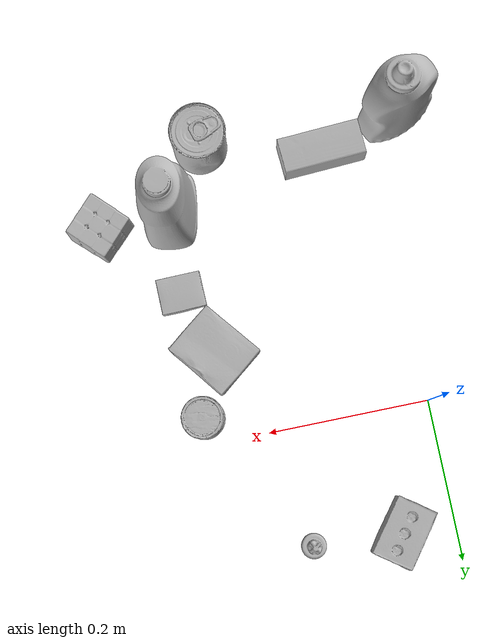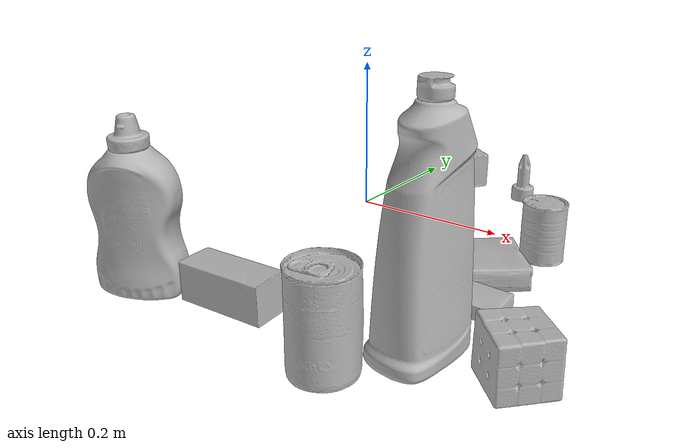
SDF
<sdf version="1.4">
  <world name="default">
    <light name="light1" type="point">
      <pose>0 0 1 0 0 0</pose>
      <diffuse>3 3 3 1</diffuse>
      <specular>3 3 3 1</specular>
    </light>
    <light name="light2" type="point">
      <pose>0 0.5 2 0 0 0</pose>
      <diffuse>1 1 1 1</diffuse>
      <specular>1 1 1 1</specular>
    </light>
    <light name="light3" type="point">
      <pose>0 0.5 2 0 0 0</pose>
      <diffuse>3 3 3 1</diffuse>
      <specular>3 3 3 1</specular>
    </light>
    <scene>
      <ambient>0.7 0.7 0.7</ambient>
    </scene>
    <model name="bottle1">
      <link name="link_bottle1">
        <collision name="default">
          <geometry>
            <mesh>
              <uri>model://bleach_cleanser/collision_meshes/collision.obj</uri>
              <scale>1.0 1.0 1.0</scale>
            </mesh>
          </geometry>
          <surface>
            <friction>
              <ode>
                <mu>0.5</mu>
                <mu2>0.5</mu2>
              </ode>
            </friction>
          <contact>
        <ode>
            <max_vel>0</max_vel>
            <min_depth>0.0001</min_depth>
            <kp>1e8</kp>
        </ode>
    </contact></surface>
        </collision>
        <visual name="default">
          <geometry>
            <mesh>
              <uri>model://bleach_cleanser/visual_meshes/visual.dae</uri>
              <scale>1.0 1.0 1.0</scale>
            </mesh>
          </geometry>
        </visual>
        <inertial>
          <mass>1.1050143241882324</mass>
          <pose>0.00012193183647468686 0.0037838828284293413 -0.02442161738872528 -0.07381670616137478 0.0004201160282461273 -0.006875061809122935</pose>
          <inertia>
            <ixx>0.0053782654</ixx>
            <iyy>0.005011756</iyy>
            <izz>0.00091954356</izz>
            <ixy>0</ixy>
            <ixz>0</ixz>
            <iyz>0</iyz>
          </inertia>
        </inertial>
      </link>
      <pose>0.26400089263916016 -0.29382839798927307 0.12578412890434265 -0.00019839865990883924 1.7724116461861908e-05 -0.13593833322500634</pose>
    </model>
    <model name="bottle2">
      <link name="link_bottle2">
        <collision name="default">
          <geometry>
            <mesh>
              <uri>model://mustard_bottle/collision_meshes/collision.obj</uri>
              <scale>1.0 1.0 1.0</scale>
            </mesh>
          </geometry>
          <surface>
            <friction>
              <ode>
                <mu>0.5</mu>
                <mu2>0.5</mu2>
              </ode>
            </friction>
          <contact>
        <ode>
            <max_vel>0</max_vel>
            <min_depth>0.0001</min_depth>
            <kp>1e8</kp>
        </ode>
    </contact></surface>
        </collision>
        <visual name="default">
          <geometry>
            <mesh>
              <uri>model://mustard_bottle/visual_meshes/visual.dae</uri>
              <scale>1.0 1.0 1.0</scale>
            </mesh>
          </geometry>
        </visual>
        <inertial>
          <mass>0.622285008430481</mass>
          <pose>0.0005032453336752951 -0.0001564739941386506 -0.0174757931381464 0.0004182326458762318 0.0009465782998157723 0.024853714910341117</pose>
          <inertia>
            <ixx>0.0017280002</ixx>
            <iyy>0.0015161741</iyy>
            <izz>0.00045541534</izz>
            <ixy>0</ixy>
            <ixz>0</ixz>
            <iyz>0</iyz>
          </inertia>
        </inertial>
      </link>
      <pose>-0.03332965448498726 -0.3620181083679199 0.0967511534690857 -0.0005515519403290093 0.030640299057795375 -1.192784842599568</pose>
    </model>
    <model name="toy1">
      <link name="link_toy1">
        <collision name="default">
          <geometry>
            <mesh>
              <uri>model://foam_brick/collision_meshes/collision.obj</uri>
              <scale>1.0 1.0 1.0</scale>
            </mesh>
          </geometry>
          <surface>
            <friction>
              <ode>
                <mu>0.5</mu>
                <mu2>0.5</mu2>
              </ode>
            </friction>
          <contact>
        <ode>
            <max_vel>0</max_vel>
            <min_depth>0.0001</min_depth>
            <kp>1e8</kp>
        </ode>
    </contact></surface>
        </collision>
        <visual name="default">
          <geometry>
            <mesh>
              <uri>model://foam_brick/visual_meshes/visual.dae</uri>
              <scale>1.0 1.0 1.0</scale>
            </mesh>
          </geometry>
        </visual>
        <inertial>
          <mass>0.1664208173751831</mass>
          <pose>-0.00025224717683158815 0.0003458438441157341 -0.00025321010616607964 -0.2940189404221327 0.017274440573450563 -0.0007449871782747126</pose>
          <inertia>
            <ixx>7.269573e-05</ixx>
            <iyy>0.00011606247</iyy>
            <izz>0.000117537464</izz>
            <ixy>0</ixy>
            <ixz>0</ixz>
            <iyz>0</iyz>
          </inertia>
        </inertial>
      </link>
      <pose>0.06652260571718216 0.15025466680526733 0.02592279203236103 0.013417074614196103 0.004152419532733587 0.933883062654845</pose>
    </model>
    <model name="toy2">
      <link name="link_toy2">
        <collision name="default">
          <geometry>
            <mesh>
              <uri>model://d_toy_airplane/collision_meshes/collision.obj</uri>
              <scale>1.0 1.0 1.0</scale>
            </mesh>
          </geometry>
          <surface>
            <friction>
              <ode>
                <mu>0.5</mu>
                <mu2>0.5</mu2>
              </ode>
            </friction>
          <contact>
        <ode>
            <max_vel>0</max_vel>
            <min_depth>0.0001</min_depth>
            <kp>1e8</kp>
        </ode>
    </contact></surface>
        </collision>
        <visual name="default">
          <geometry>
            <mesh>
              <uri>model://d_toy_airplane/visual_meshes/visual.dae</uri>
              <scale>1.0 1.0 1.0</scale>
            </mesh>
          </geometry>
        </visual>
        <inertial>
          <mass>0.021938346326351166</mass>
          <pose>9.410325583303347e-05 -5.8093231928069144e-05 -0.01172809861600399 0.0002669142468379238 0.0046790018194854816 0.5194488187392164</pose>
          <inertia>
            <ixx>6.5766894e-06</ixx>
            <iyy>6.581649e-06</iyy>
            <izz>1.9855454e-06</izz>
            <ixy>0</ixy>
            <ixz>0</ixz>
            <iyz>0</iyz>
          </inertia>
        </inertial>
      </link>
      <pose>0.17470517754554749 0.14496397972106934 0.03333839774131775 0.00020620832411347333 -5.550613489470571e-05 -1.8243278063236952</pose>
    </model>
    <model name="can1">
      <link name="link_can1">
        <collision name="default">
          <geometry>
            <mesh>
              <uri>model://tomato_soup_can/collision_meshes/collision.obj</uri>
              <scale>1.0 1.0 1.0</scale>
            </mesh>
          </geometry>
          <surface>
            <friction>
              <ode>
                <mu>0.5</mu>
                <mu2>0.5</mu2>
              </ode>
            </friction>
          <contact>
        <ode>
            <max_vel>0</max_vel>
            <min_depth>0.0001</min_depth>
            <kp>1e8</kp>
        </ode>
    </contact></surface>
        </collision>
        <visual name="default">
          <geometry>
            <mesh>
              <uri>model://tomato_soup_can/visual_meshes/visual.dae</uri>
              <scale>1.0 1.0 1.0</scale>
            </mesh>
          </geometry>
        </visual>
        <inertial>
          <mass>0.39673706889152527</mass>
          <pose>0.00012652271834667772 0.00010805520287249237 -0.0017973972717300057 0.007020066809275346 0.000422998323222239 -0.009903841103285913</pose>
          <inertia>
            <ixx>0.00043498844</ixx>
            <iyy>0.00043247454</iyy>
            <izz>0.00022545052</izz>
            <ixy>0</ixy>
            <ixz>0</ixz>
            <iyz>0</iyz>
          </inertia>
        </inertial>
      </link>
      <pose>0.2111254334449768 -0.3656170964241028 0.05127401649951935 -2.4884977718946107e-08 -1.8716533509595056e-07 -1.5581791900506614</pose>
    </model>
    <model name="can2">
      <link name="link_can2">
        <collision name="default">
          <geometry>
            <mesh>
              <uri>model://master_chef_can/collision_meshes/collision.obj</uri>
              <scale>0.5 0.5 0.5</scale>
            </mesh>
          </geometry>
          <surface>
            <friction>
              <ode>
                <mu>0.5</mu>
                <mu2>0.5</mu2>
              </ode>
            </friction>
          <contact>
        <ode>
            <max_vel>0</max_vel>
            <min_depth>0.0001</min_depth>
            <kp>1e8</kp>
        </ode>
    </contact></surface>
        </collision>
        <visual name="default">
          <geometry>
            <mesh>
              <uri>model://master_chef_can/visual_meshes/visual.dae</uri>
              <scale>0.5 0.5 0.5</scale>
            </mesh>
          </geometry>
        </visual>
        <inertial>
          <mass>0.08835740387439728</mass>
          <pose>-4.6619654312962666e-05 1.3926853625889635e-07 -5.079947004560381e-05 -0.0017995147102642629 0.0006479189020740588 -0.6102650934471076</pose>
          <inertia>
            <ixx>5.1859814e-05</ixx>
            <iyy>5.1478128e-05</iyy>
            <izz>2.8656508e-05</izz>
            <ixy>0</ixy>
            <ixz>0</ixz>
            <iyz>0</iyz>
          </inertia>
        </inertial>
      </link>
      <pose>0.273909330368042 -0.03334834799170494 0.03530198335647583 -6.464897083989158e-07 -4.267319027519836e-07 -2.8144447219190347</pose>
    </model>
    <model name="box1">
      <link name="link_box1">
        <collision name="default">
          <geometry>
            <mesh>
              <uri>model://wood_block/collision_meshes/collision.obj</uri>
              <scale>0.5 0.5 0.5</scale>
            </mesh>
          </geometry>
          <surface>
            <friction>
              <ode>
                <mu>0.5</mu>
                <mu2>0.5</mu2>
              </ode>
            </friction>
          <contact>
        <ode>
            <max_vel>0</max_vel>
            <min_depth>0.0001</min_depth>
            <kp>1e8</kp>
        </ode>
    </contact></surface>
        </collision>
        <visual name="default">
          <geometry>
            <mesh>
              <uri>model://wood_block/visual_meshes/visual.dae</uri>
              <scale>0.5 0.5 0.5</scale>
            </mesh>
          </geometry>
        </visual>
        <inertial>
          <mass>0.15377527475357056</mass>
          <pose>-2.9066577553749084e-06 -0.000285404734313488 0.00013204291462898254 -0.05220825990774677 -0.0051926953585221414 -0.0068613782788382646</pose>
          <inertia>
            <ixx>5.1443654e-05</ixx>
            <iyy>0.00016251049</iyy>
            <izz>0.00016190263</izz>
            <ixy>0</ixy>
            <ixz>0</ixz>
            <iyz>0</iyz>
          </inertia>
        </inertial>
      </link>
      <pose>0.0652967169880867 -0.3297848105430603 0.022629262879490852 -0.00520845750513966 0.005718548036876521 -3.085102105504044</pose>
    </model>
    <model name="box2">
      <link name="link_box2">
        <collision name="default">
          <geometry>
            <mesh>
              <uri>model://rubiks_cube/collision_meshes/collision.obj</uri>
              <scale>1.0 1.0 1.0</scale>
            </mesh>
          </geometry>
          <surface>
            <friction>
              <ode>
                <mu>0.5</mu>
                <mu2>0.5</mu2>
              </ode>
            </friction>
          <contact>
        <ode>
            <max_vel>0</max_vel>
            <min_depth>0.0001</min_depth>
            <kp>1e8</kp>
        </ode>
    </contact></surface>
        </collision>
        <visual name="default">
          <geometry>
            <mesh>
              <uri>model://rubiks_cube/visual_meshes/visual.dae</uri>
              <scale>1.0 1.0 1.0</scale>
            </mesh>
          </geometry>
        </visual>
        <inertial>
          <mass>0.2856966555118561</mass>
          <pose>2.6721041649580002e-05 5.2569666877388954e-05 -7.264316082000732e-06 -0.05467209736319516 -0.09813912050272719 -0.034455106160143086</pose>
          <inertia>
            <ixx>0.00015786657</ixx>
            <iyy>0.00015713037</iyy>
            <izz>0.00015917476</izz>
            <ixy>0</ixy>
            <ixz>0</ixz>
            <iyz>0</iyz>
          </inertia>
        </inertial>
      </link>
      <pose>0.352079302072525 -0.28693118691444397 0.029330065473914146 1.5776150864773921 -0.016676054076523963 0.7907552289932879</pose>
    </model>
    <model name="box3">
      <link name="link_box3">
        <collision name="default">
          <geometry>
            <mesh>
              <uri>model://gelatin_box/collision_meshes/collision.obj</uri>
              <scale>1.0 1.0 1.0</scale>
            </mesh>
          </geometry>
          <surface>
            <friction>
              <ode>
                <mu>0.5</mu>
                <mu2>0.5</mu2>
              </ode>
            </friction>
          <contact>
        <ode>
            <max_vel>0</max_vel>
            <min_depth>0.0001</min_depth>
            <kp>1e8</kp>
        </ode>
    </contact></surface>
        </collision>
        <visual name="default">
          <geometry>
            <mesh>
              <uri>model://gelatin_box/visual_meshes/visual.dae</uri>
              <scale>1.0 1.0 1.0</scale>
            </mesh>
          </geometry>
        </visual>
        <inertial>
          <mass>0.24612535536289215</mass>
          <pose>0.0004319618456065655 0.00011156871914863586 -0.00036403213744051754 -0.0010503719772071295 -0.004755818223732799 0.016440561334178715</pose>
          <inertia>
            <ixx>0.00017374444</ixx>
            <iyy>0.00012410474</iyy>
            <izz>0.00026447774</izz>
            <ixy>0</ixy>
            <ixz>0</ixz>
            <iyz>0</iyz>
          </inertia>
        </inertial>
      </link>
      <pose>0.24507589638233185 -0.11295869201421738 0.015168317593634129 0.005597487705630646 -0.007304569178273977 0.6531054697347131</pose>
    </model>
    <model name="box4">
      <link name="link_box4">
        <collision name="default">
          <geometry>
            <mesh>
              <uri>model://pudding_box/collision_meshes/collision.obj</uri>
              <scale>0.5 0.5 0.5</scale>
            </mesh>
          </geometry>
          <surface>
            <friction>
              <ode>
                <mu>0.5</mu>
                <mu2>0.5</mu2>
              </ode>
            </friction>
          <contact>
        <ode>
            <max_vel>0</max_vel>
            <min_depth>0.0001</min_depth>
            <kp>1e8</kp>
        </ode>
    </contact></surface>
        </collision>
        <visual name="default">
          <geometry>
            <mesh>
              <uri>model://pudding_box/visual_meshes/visual.dae</uri>
              <scale>0.5 0.5 0.5</scale>
            </mesh>
          </geometry>
        </visual>
        <inertial>
          <mass>0.025328172370791435</mass>
          <pose>0.00024474109522998333 0.00040339428232982755 -0.0002594413817860186 0.00521310085836893 -0.006603797787762854 0.020079828890944847</pose>
          <inertia>
            <ixx>7.15805e-06</ixx>
            <iyy>4.8159864e-06</iyy>
            <izz>1.0570731e-05</izz>
            <ixy>0</ixy>
            <ixz>0</ixz>
            <iyz>0</iyz>
          </inertia>
        </inertial>
      </link>
      <pose>0.2713460326194763 -0.1907871514558792 0.009862905368208885 0.02234990564484075 -0.011390744145494833 1.5842740866061962</pose>
    </model>
  <physics type="ode">
      <max_contacts>50</max_contacts>
      <ode>
        <solver>
          <type>quick</type>
          <iters>75</iters>
        </solver>
        <constraints>
          <contact_max_correcting_vel>0</contact_max_correcting_vel>
          <contact_surface_layer>0</contact_surface_layer>
        </constraints>
      </ode>
    </physics></world>
</sdf>
